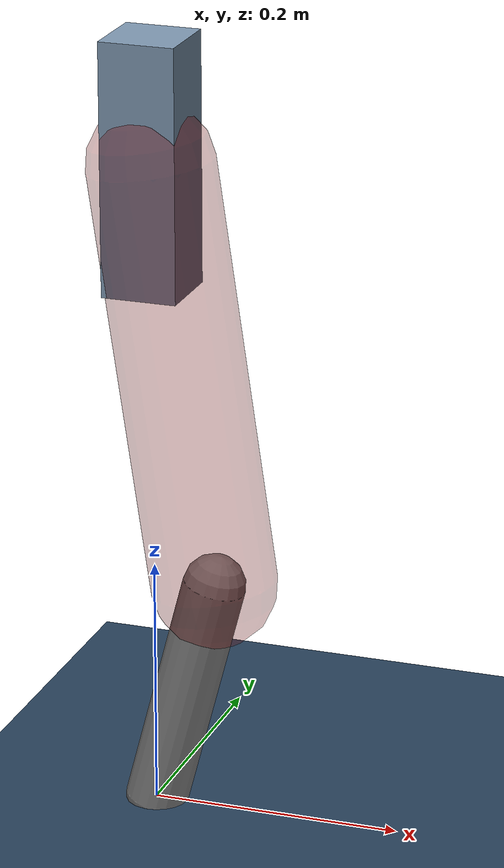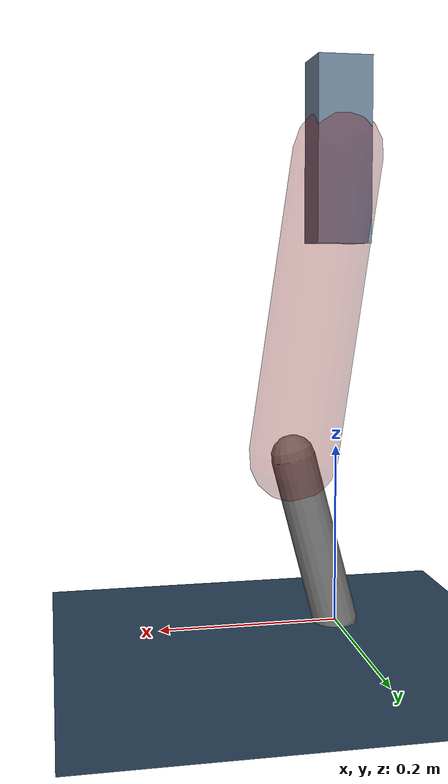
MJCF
<mujoco model="Hopper2D">
	<compiler inertiafromgeom="true" angle="radian" />
	<option timestep="0.001" integrator="implicit" cone="elliptic" solver="Newton" tolerance="1e-10" />

	<default>
		<geom contype="1" conaffinity="1" condim="3" friction="2 0.005 0.0001" solref="0.005 1" />
		<joint limited="true" damping="0.1" />
	</default>

	<asset>
		<texture name="skybox" type="skybox" builtin="gradient" rgb1=".4 .6 .8" rgb2="0 0 0" width="800" height="800" />
		<texture name="grid" type="2d" builtin="checker" rgb1=".1 .2 .3" rgb2=".2 .3 .4" width="300" height="300" mark="edge" markrgb=".2 .3 .4" />
		<material name="ground" texture="grid" texrepeat="1 1" texuniform="true" reflectance="0.1" />
		<material name="leg" rgba="0.5 0.6 0.7 1" />
	</asset>

	<worldbody>

		<geom name="floor" type="plane" size="5 5 0.25" material="ground" />

		<light directional="false" diffuse="0.8 0.8 0.8" specular="0.3 0.3 0.3" pos="0 0 2" dir="0 0 -1" />
		<light mode="targetbodycom" target="base" directional="false" diffuse="0.8 0.8 0.8" specular="0.3 0.3 0.3" pos="0 0 2" dir="0 0 -1" />

		<camera name="fixed" pos="0 -2 1" xyaxes="1 0 0 0 0 1" />
		<camera name="tracking" mode="trackcom" pos="0 -3 1" />

		<body name="root" pos="0 0 0.5265854075126027">
			<joint name="slide_x" type="slide" axis="1 0 0" range="-100 100" />
			<joint name="slide_z" type="slide" axis="0 0 1" range="0 10" />

			<body name="base" pos="0 0 0">
				<geom name="torso" type="box" size="0.03 0.03 0.1" mass="2.834" material="leg" />

				<body name="link1" pos="0 0 0" euler="0 1.4248196392460504 0">
					<joint type="hinge" axis="0 -1 0" pos="0 0 0" name="hinge1" limited="true" range="-3.14 3.14" stiffness="0" damping="0.1" />
					<geom name="thigh" type="capsule" fromto="0 0 0 0.3407467892835924 0 0" size="0.05" rgba="0.5 0 0 0.3" mass="1.1007163310656993" />

					<body name="link2" pos="0.3407467892835924 0 0" euler="0 0.401848666798908 0">
						<joint type="hinge" axis="0 -1 0" pos="0 0 0" name="hinge2" limited="true" range="-3.14 3.14" stiffness="0" damping="0.1" />
						<geom name="shank" type="capsule" fromto="0 0 0 0.1958386182290103 0 0" size="0.025" mass="0.39737089458320823" />

					</body>
				</body>
			</body>
		</body>
	</worldbody>

	<actuator>
		<motor name="torque1" joint="hinge1" ctrlrange="-77.9174331723919 77.9174331723919" ctrllimited="true" gear="1" />
		<motor name="torque2" joint="hinge2" ctrlrange="-114.90701075316905 114.90701075316905" ctrllimited="true" gear="1" />
	</actuator>
</mujoco>
